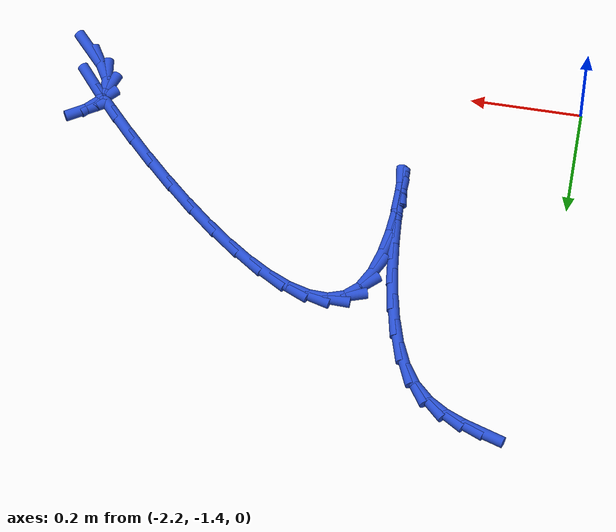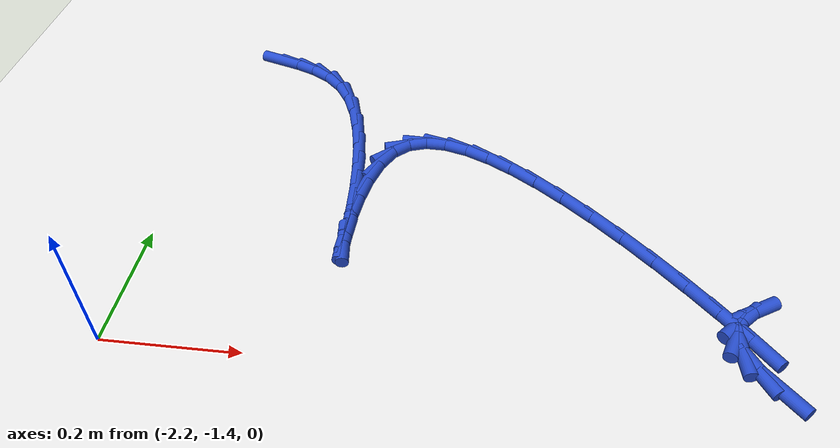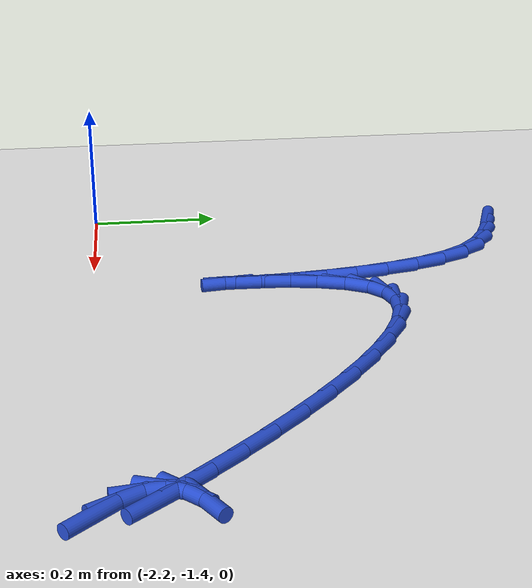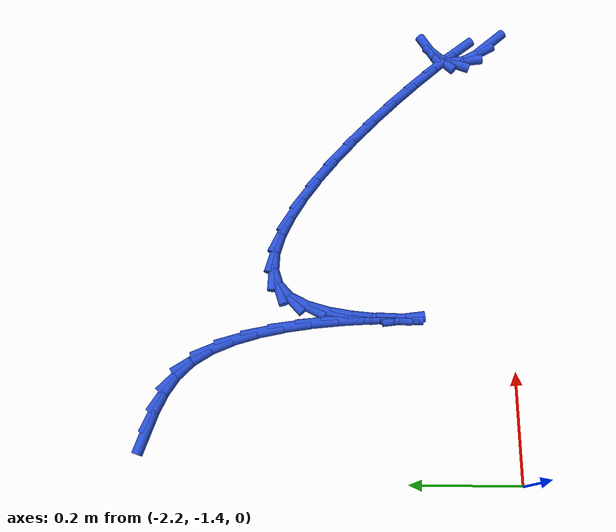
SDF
<sdf version="1.6">
 <world name="default">
  <model name="ground_plane">
   <static>1</static>
   <link name="link">
    <collision name="collision">
     <geometry><plane><normal>0 0 1</normal><size>100 100</size></plane></geometry>
     <surface><friction><ode><mu>100</mu><mu2>50</mu2></ode></friction></surface>
    </collision>
    <visual name="visual">
     <cast_shadows>0</cast_shadows>
     <geometry><plane><normal>0 0 1</normal><size>100 100</size></plane></geometry>
     <material>
      <script><uri>file://media/materials/scripts/gazebo.material</uri><name>Gazebo/WhiteGlow</name></script>
     </material>
    </visual>
   </link>
  </model>
  <model name="line">
   <link name="link_145">
    <pose>-2.11602802087698 -0.7365968966434566 0.01 0 1.57 -0.31047247829978486</pose>
    <collision name="collision">
     <geometry><cylinder><radius>0.01</radius><length>0.08</length></cylinder></geometry>
    </collision>
    <visual name="visual">
     <material>
      <script><name>Gazebo/Blue</name><uri>file://media/materials/scripts/gazebo.material</uri></script>
     </material>
     <geometry><cylinder><radius>0.01</radius><length>0.08</length></cylinder></geometry>
    </visual>
   </link>
   <link name="link_146">
    <pose>-2.0814514845681753 -0.7476907279448258 0.01 0 1.57 -0.40312324345795586</pose>
    <collision name="collision">
     <geometry><cylinder><radius>0.01</radius><length>0.08</length></cylinder></geometry>
    </collision>
    <visual name="visual">
     <material>
      <script><name>Gazebo/Blue</name><uri>file://media/materials/scripts/gazebo.material</uri></script>
     </material>
     <geometry><cylinder><radius>0.01</radius><length>0.08</length></cylinder></geometry>
    </visual>
   </link>
   <link name="link_147">
    <pose>-2.0478871302217 -0.7620052415232837 0.01 0 1.57 -0.5578605766019754</pose>
    <collision name="collision">
     <geometry><cylinder><radius>0.01</radius><length>0.08</length></cylinder></geometry>
    </collision>
    <visual name="visual">
     <material>
      <script><name>Gazebo/Blue</name><uri>file://media/materials/scripts/gazebo.material</uri></script>
     </material>
     <geometry><cylinder><radius>0.01</radius><length>0.08</length></cylinder></geometry>
    </visual>
   </link>
   <link name="link_148">
    <pose>-2.016595764341615 -0.7815302141396764 0.01 0 1.57 -0.7664520123413866</pose>
    <collision name="collision">
     <geometry><cylinder><radius>0.01</radius><length>0.08</length></cylinder></geometry>
    </collision>
    <visual name="visual">
     <material>
      <script><name>Gazebo/Blue</name><uri>file://media/materials/scripts/gazebo.material</uri></script>
     </material>
     <geometry><cylinder><radius>0.01</radius><length>0.08</length></cylinder></geometry>
    </visual>
   </link>
   <link name="link_149">
    <pose>-1.9888381934319856 -0.8082554225548505 0.01 0 1.57 -0.9933609812040997</pose>
    <collision name="collision">
     <geometry><cylinder><radius>0.01</radius><length>0.08</length></cylinder></geometry>
    </collision>
    <visual name="visual">
     <material>
      <script><name>Gazebo/Blue</name><uri>file://media/materials/scripts/gazebo.material</uri></script>
     </material>
     <geometry><cylinder><radius>0.01</radius><length>0.08</length></cylinder></geometry>
    </visual>
   </link>
   <link name="link_150">
    <pose>-1.9657119761763013 -0.843751808380879 0.01 0 1.57 -1.1637436459038697</pose>
    <collision name="collision">
     <geometry><cylinder><radius>0.01</radius><length>0.08</length></cylinder></geometry>
    </collision>
    <visual name="visual">
     <material>
      <script><name>Gazebo/Blue</name><uri>file://media/materials/scripts/gazebo.material</uri></script>
     </material>
     <geometry><cylinder><radius>0.01</radius><length>0.08</length></cylinder></geometry>
    </visual>
   </link>
   <link name="link_151">
    <pose>-1.9471916994690344 -0.8867091718175285 0.01 0 1.57 -1.2785103189010771</pose>
    <collision name="collision">
     <geometry><cylinder><radius>0.01</radius><length>0.08</length></cylinder></geometry>
    </collision>
    <visual name="visual">
     <material>
      <script><name>Gazebo/Blue</name><uri>file://media/materials/scripts/gazebo.material</uri></script>
     </material>
     <geometry><cylinder><radius>0.01</radius><length>0.08</length></cylinder></geometry>
    </visual>
   </link>
   <link name="link_152">
    <pose>-1.9327795547486228 -0.9346053163566493 0.01 0 1.57 -1.3592647021777633</pose>
    <collision name="collision">
     <geometry><cylinder><radius>0.01</radius><length>0.08</length></cylinder></geometry>
    </collision>
    <visual name="visual">
     <material>
      <script><name>Gazebo/Blue</name><uri>file://media/materials/scripts/gazebo.material</uri></script>
     </material>
     <geometry><cylinder><radius>0.01</radius><length>0.08</length></cylinder></geometry>
    </visual>
   </link>
   <link name="link_153">
    <pose>-1.9219760930564305 -0.9849138368216397 0.01 0 1.57 -1.418692011305713</pose>
    <collision name="collision">
     <geometry><cylinder><radius>0.01</radius><length>0.08</length></cylinder></geometry>
    </collision>
    <visual name="visual">
     <material>
      <script><name>Gazebo/Blue</name><uri>file://media/materials/scripts/gazebo.material</uri></script>
     </material>
     <geometry><cylinder><radius>0.01</radius><length>0.08</length></cylinder></geometry>
    </visual>
   </link>
   <link name="link_154">
    <pose>-1.914281865433821 -1.0351083280358986 0.01 0 1.57 -1.4642817614699033</pose>
    <collision name="collision">
     <geometry><cylinder><radius>0.01</radius><length>0.08</length></cylinder></geometry>
    </collision>
    <visual name="visual">
     <material>
      <script><name>Gazebo/Blue</name><uri>file://media/materials/scripts/gazebo.material</uri></script>
     </material>
     <geometry><cylinder><radius>0.01</radius><length>0.08</length></cylinder></geometry>
    </visual>
   </link>
   <link name="link_155">
    <pose>-1.9091974229221589 -1.0826623848228245 0.01 0 1.57 -1.5007459610336376</pose>
    <collision name="collision">
     <geometry><cylinder><radius>0.01</radius><length>0.08</length></cylinder></geometry>
    </collision>
    <visual name="visual">
     <material>
      <script><name>Gazebo/Blue</name><uri>file://media/materials/scripts/gazebo.material</uri></script>
     </material>
     <geometry><cylinder><radius>0.01</radius><length>0.08</length></cylinder></geometry>
    </visual>
   </link>
   <link name="link_156">
    <pose>-1.9062233165628069 -1.1250496020058158 0.01 0 1.57 -1.5315238493070107</pose>
    <collision name="collision">
     <geometry><cylinder><radius>0.01</radius><length>0.08</length></cylinder></geometry>
    </collision>
    <visual name="visual">
     <material>
      <script><name>Gazebo/Blue</name><uri>file://media/materials/scripts/gazebo.material</uri></script>
     </material>
     <geometry><cylinder><radius>0.01</radius><length>0.08</length></cylinder></geometry>
    </visual>
   </link>
   <link name="link_157">
    <pose>-1.9048600973971297 -1.159743574408271 0.01 0 1.57 -1.5605091350062055</pose>
    <collision name="collision">
     <geometry><cylinder><radius>0.01</radius><length>0.08</length></cylinder></geometry>
    </collision>
    <visual name="visual">
     <material>
      <script><name>Gazebo/Blue</name><uri>file://media/materials/scripts/gazebo.material</uri></script>
     </material>
     <geometry><cylinder><radius>0.01</radius><length>0.08</length></cylinder></geometry>
    </visual>
   </link>
   <link name="link_158">
    <pose>-1.904608316466491 -1.1842178968535888 0.01 0 1.57 1.5400931426541125</pose>
    <collision name="collision">
     <geometry><cylinder><radius>0.01</radius><length>0.08</length></cylinder></geometry>
    </collision>
    <visual name="visual">
     <material>
      <script><name>Gazebo/Blue</name><uri>file://media/materials/scripts/gazebo.material</uri></script>
     </material>
     <geometry><cylinder><radius>0.01</radius><length>0.08</length></cylinder></geometry>
    </visual>
   </link>
   <link name="link_159">
    <pose>-1.904968524812255 -1.1959461641651676 0.01 0 1.57 -1.4381922341594515</pose>
    <collision name="collision">
     <geometry><cylinder><radius>0.01</radius><length>0.08</length></cylinder></geometry>
    </collision>
    <visual name="visual">
     <material>
      <script><name>Gazebo/Blue</name><uri>file://media/materials/scripts/gazebo.material</uri></script>
     </material>
     <geometry><cylinder><radius>0.01</radius><length>0.08</length></cylinder></geometry>
    </visual>
   </link>
   <link name="link_160">
    <pose>-1.9054412734757853 -1.1924019711664067 0.01 0 1.57 -1.5706328962005065</pose>
    <collision name="collision">
     <geometry><cylinder><radius>0.01</radius><length>0.08</length></cylinder></geometry>
    </collision>
    <visual name="visual">
     <material>
      <script><name>Gazebo/Blue</name><uri>file://media/materials/scripts/gazebo.material</uri></script>
     </material>
     <geometry><cylinder><radius>0.01</radius><length>0.08</length></cylinder></geometry>
    </visual>
   </link>
   <link name="link_161">
    <pose>-1.90544455852294 -1.1723014071456057 0.01 0 1.57 1.5286655876502104</pose>
    <collision name="collision">
     <geometry><cylinder><radius>0.01</radius><length>0.08</length></cylinder></geometry>
    </collision>
    <visual name="visual">
     <material>
      <script><name>Gazebo/Blue</name><uri>file://media/materials/scripts/gazebo.material</uri></script>
     </material>
     <geometry><cylinder><radius>0.01</radius><length>0.08</length></cylinder></geometry>
    </visual>
   </link>
   <link name="link_162">
    <pose>-1.9040591158367315 -1.1394364990660397 0.01 0 1.57 1.4778376806809477</pose>
    <collision name="collision">
     <geometry><cylinder><radius>0.01</radius><length>0.08</length></cylinder></geometry>
    </collision>
    <visual name="visual">
     <material>
      <script><name>Gazebo/Blue</name><uri>file://media/materials/scripts/gazebo.material</uri></script>
     </material>
     <geometry><cylinder><radius>0.01</radius><length>0.08</length></cylinder></geometry>
    </visual>
   </link>
   <link name="link_163">
    <pose>-1.9002795688216205 -1.0988953105901944 0.01 0 1.57 1.405855341882933</pose>
    <collision name="collision">
     <geometry><cylinder><radius>0.01</radius><length>0.08</length></cylinder></geometry>
    </collision>
    <visual name="visual">
     <material>
      <script><name>Gazebo/Blue</name><uri>file://media/materials/scripts/gazebo.material</uri></script>
     </material>
     <geometry><cylinder><radius>0.01</radius><length>0.08</length></cylinder></geometry>
    </visual>
   </link>
   <link name="link_164">
    <pose>-1.89310054085275 -1.0557659058218027 0.01 0 1.57 1.29305560544293</pose>
    <collision name="collision">
     <geometry><cylinder><radius>0.01</radius><length>0.08</length></cylinder></geometry>
    </collision>
    <visual name="visual">
     <material>
      <script><name>Gazebo/Blue</name><uri>file://media/materials/scripts/gazebo.material</uri></script>
     </material>
     <geometry><cylinder><radius>0.01</radius><length>0.08</length></cylinder></geometry>
    </visual>
   </link>
   <link name="link_165">
    <pose>-1.8815166553052634 -1.0151363488645972 0.01 0 1.57 1.0957550850307063</pose>
    <collision name="collision">
     <geometry><cylinder><radius>0.01</radius><length>0.08</length></cylinder></geometry>
    </collision>
    <visual name="visual">
     <material>
      <script><name>Gazebo/Blue</name><uri>file://media/materials/scripts/gazebo.material</uri></script>
     </material>
     <geometry><cylinder><radius>0.01</radius><length>0.08</length></cylinder></geometry>
    </visual>
   </link>
   <link name="link_166">
    <pose>-1.864522535554304 -0.9820947038223105 0.01 0 1.57 0.743063597456006</pose>
    <collision name="collision">
     <geometry><cylinder><radius>0.01</radius><length>0.08</length></cylinder></geometry>
    </collision>
    <visual name="visual">
     <material>
      <script><name>Gazebo/Blue</name><uri>file://media/materials/scripts/gazebo.material</uri></script>
     </material>
     <geometry><cylinder><radius>0.01</radius><length>0.08</length></cylinder></geometry>
    </visual>
   </link>
   <link name="link_167">
    <pose>-1.8413744357397341 -0.9608280091492051 0.01 0 1.57 0.31774739328956525</pose>
    <collision name="collision">
     <geometry><cylinder><radius>0.01</radius><length>0.08</length></cylinder></geometry>
    </collision>
    <visual name="visual">
     <material>
      <script><name>Gazebo/Blue</name><uri>file://media/materials/scripts/gazebo.material</uri></script>
     </material>
     <geometry><cylinder><radius>0.01</radius><length>0.08</length></cylinder></geometry>
    </visual>
   </link>
   <link name="link_168">
    <pose>-1.8125418033536875 -0.9513452077711462 0.01 0 1.57 -0.03262906418674657</pose>
    <collision name="collision">
     <geometry><cylinder><radius>0.01</radius><length>0.08</length></cylinder></geometry>
    </collision>
    <visual name="visual">
     <material>
      <script><name>Gazebo/Blue</name><uri>file://media/materials/scripts/gazebo.material</uri></script>
     </material>
     <geometry><cylinder><radius>0.01</radius><length>0.08</length></cylinder></geometry>
    </visual>
   </link>
   <link name="link_169">
    <pose>-1.7788454814387267 -0.9524450775770741 0.01 0 1.57 -0.2709001555543969</pose>
    <collision name="collision">
     <geometry><cylinder><radius>0.01</radius><length>0.08</length></cylinder></geometry>
    </collision>
    <visual name="visual">
     <material>
      <script><name>Gazebo/Blue</name><uri>file://media/materials/scripts/gazebo.material</uri></script>
     </material>
     <geometry><cylinder><radius>0.01</radius><length>0.08</length></cylinder></geometry>
    </visual>
   </link>
   <link name="link_170">
    <pose>-1.741106349269625 -0.9629262716764487 0.01 0 1.57 -0.4274871915382154</pose>
    <collision name="collision">
     <geometry><cylinder><radius>0.01</radius><length>0.08</length></cylinder></geometry>
    </collision>
    <visual name="visual">
     <material>
      <script><name>Gazebo/Blue</name><uri>file://media/materials/scripts/gazebo.material</uri></script>
     </material>
     <geometry><cylinder><radius>0.01</radius><length>0.08</length></cylinder></geometry>
    </visual>
   </link>
   <link name="link_171">
    <pose>-1.700145286121156 -0.9815874431787286 0.01 0 1.57 -0.533994182326448</pose>
    <collision name="collision">
     <geometry><cylinder><radius>0.01</radius><length>0.08</length></cylinder></geometry>
    </collision>
    <visual name="visual">
     <material>
      <script><name>Gazebo/Blue</name><uri>file://media/materials/scripts/gazebo.material</uri></script>
     </material>
     <geometry><cylinder><radius>0.01</radius><length>0.08</length></cylinder></geometry>
    </visual>
   </link>
   <link name="link_172">
    <pose>-1.656783171268092 -1.007227245193373 0.01 0 1.57 -0.6100907819886694</pose>
    <collision name="collision">
     <geometry><cylinder><radius>0.01</radius><length>0.08</length></cylinder></geometry>
    </collision>
    <visual name="visual">
     <material>
      <script><name>Gazebo/Blue</name><uri>file://media/materials/scripts/gazebo.material</uri></script>
     </material>
     <geometry><cylinder><radius>0.01</radius><length>0.08</length></cylinder></geometry>
    </visual>
   </link>
   <link name="link_173">
    <pose>-1.6118408839852079 -1.0386443308298414 0.01 0 1.57 -0.6671132712760014</pose>
    <collision name="collision">
     <geometry><cylinder><radius>0.01</radius><length>0.08</length></cylinder></geometry>
    </collision>
    <visual name="visual">
     <material>
      <script><name>Gazebo/Blue</name><uri>file://media/materials/scripts/gazebo.material</uri></script>
     </material>
     <geometry><cylinder><radius>0.01</radius><length>0.08</length></cylinder></geometry>
    </visual>
   </link>
   <link name="link_174">
    <pose>-1.5661393035472768 -1.0746373531975921 0.01 0 1.57 -0.7117455068609005</pose>
    <collision name="collision">
     <geometry><cylinder><radius>0.01</radius><length>0.08</length></cylinder></geometry>
    </collision>
    <visual name="visual">
     <material>
      <script><name>Gazebo/Blue</name><uri>file://media/materials/scripts/gazebo.material</uri></script>
     </material>
     <geometry><cylinder><radius>0.01</radius><length>0.08</length></cylinder></geometry>
    </visual>
   </link>
   <link name="link_175">
    <pose>-1.5204993092290717 -1.1140049654060855 0.01 0 1.57 -0.748141552457472</pose>
    <collision name="collision">
     <geometry><cylinder><radius>0.01</radius><length>0.08</length></cylinder></geometry>
    </collision>
    <visual name="visual">
     <material>
      <script><name>Gazebo/Blue</name><uri>file://media/materials/scripts/gazebo.material</uri></script>
     </material>
     <geometry><cylinder><radius>0.01</radius><length>0.08</length></cylinder></geometry>
    </visual>
   </link>
   <link name="link_176">
    <pose>-1.475741780305367 -1.1555458205647782 0.01 0 1.57 -0.7790706514068719</pose>
    <collision name="collision">
     <geometry><cylinder><radius>0.01</radius><length>0.08</length></cylinder></geometry>
    </collision>
    <visual name="visual">
     <material>
      <script><name>Gazebo/Blue</name><uri>file://media/materials/scripts/gazebo.material</uri></script>
     </material>
     <geometry><cylinder><radius>0.01</radius><length>0.08</length></cylinder></geometry>
    </visual>
   </link>
   <link name="link_177">
    <pose>-1.432687596050934 -1.1980585717831325 0.01 0 1.57 -0.8065672146717712</pose>
    <collision name="collision">
     <geometry><cylinder><radius>0.01</radius><length>0.08</length></cylinder></geometry>
    </collision>
    <visual name="visual">
     <material>
      <script><name>Gazebo/Blue</name><uri>file://media/materials/scripts/gazebo.material</uri></script>
     </material>
     <geometry><cylinder><radius>0.01</radius><length>0.08</length></cylinder></geometry>
    </visual>
   </link>
   <link name="link_178">
    <pose>-1.3921576357405474 -1.2403418721706059 0.01 0 1.57 -0.8323621907809274</pose>
    <collision name="collision">
     <geometry><cylinder><radius>0.01</radius><length>0.08</length></cylinder></geometry>
    </collision>
    <visual name="visual">
     <material>
      <script><name>Gazebo/Blue</name><uri>file://media/materials/scripts/gazebo.material</uri></script>
     </material>
     <geometry><cylinder><radius>0.01</radius><length>0.08</length></cylinder></geometry>
    </visual>
   </link>
   <link name="link_179">
    <pose>-1.35497277864898 -1.2811943748366574 0.01 0 1.57 -0.8582831387840837</pose>
    <collision name="collision">
     <geometry><cylinder><radius>0.01</radius><length>0.08</length></cylinder></geometry>
    </collision>
    <visual name="visual">
     <material>
      <script><name>Gazebo/Blue</name><uri>file://media/materials/scripts/gazebo.material</uri></script>
     </material>
     <geometry><cylinder><radius>0.01</radius><length>0.08</length></cylinder></geometry>
    </visual>
   </link>
   <link name="link_180">
    <pose>-1.3219539040510064 -1.3194147328907473 0.01 0 1.57 -0.88685837565516</pose>
    <collision name="collision">
     <geometry><cylinder><radius>0.01</radius><length>0.08</length></cylinder></geometry>
    </collision>
    <visual name="visual">
     <material>
      <script><name>Gazebo/Blue</name><uri>file://media/materials/scripts/gazebo.material</uri></script>
     </material>
     <geometry><cylinder><radius>0.01</radius><length>0.08</length></cylinder></geometry>
    </visual>
   </link>
   <link name="link_188">
    <pose>-1.3028433443896863 -1.3886053146968091 0.01 0 1.57 -0.8421901396646009</pose>
    <collision name="collision">
     <geometry><cylinder><radius>0.01</radius><length>0.08</length></cylinder></geometry>
    </collision>
    <visual name="visual">
     <material>
      <script><name>Gazebo/Blue</name><uri>file://media/materials/scripts/gazebo.material</uri></script>
     </material>
     <geometry><cylinder><radius>0.01</radius><length>0.08</length></cylinder></geometry>
    </visual>
   </link>
   <link name="link_189">
    <pose>-1.328573165156814 -1.359773494823222 0.01 0 1.57 -1.0493458742304498</pose>
    <collision name="collision">
     <geometry><cylinder><radius>0.01</radius><length>0.08</length></cylinder></geometry>
    </collision>
    <visual name="visual">
     <material>
      <script><name>Gazebo/Blue</name><uri>file://media/materials/scripts/gazebo.material</uri></script>
     </material>
     <geometry><cylinder><radius>0.01</radius><length>0.08</length></cylinder></geometry>
    </visual>
   </link>
   <link name="link_190">
    <pose>-1.3450701549738588 -1.3310575771429387 0.01 0 1.57 -1.4433901893644718</pose>
    <collision name="collision">
     <geometry><cylinder><radius>0.01</radius><length>0.08</length></cylinder></geometry>
    </collision>
    <visual name="visual">
     <material>
      <script><name>Gazebo/Blue</name><uri>file://media/materials/scripts/gazebo.material</uri></script>
     </material>
     <geometry><cylinder><radius>0.01</radius><length>0.08</length></cylinder></geometry>
    </visual>
   </link>
   <link name="link_191">
    <pose>-1.3483768859379077 -1.3052439102149682 0.01 0 1.57 1.2076398785904907</pose>
    <collision name="collision">
     <geometry><cylinder><radius>0.01</radius><length>0.08</length></cylinder></geometry>
    </collision>
    <visual name="visual">
     <material>
      <script><name>Gazebo/Blue</name><uri>file://media/materials/scripts/gazebo.material</uri></script>
     </material>
     <geometry><cylinder><radius>0.01</radius><length>0.08</length></cylinder></geometry>
    </visual>
   </link>
   <link name="link_192">
    <pose>-1.3396958133816486 -1.282399631764804 0.01 0 1.57 0.8050051650661201</pose>
    <collision name="collision">
     <geometry><cylinder><radius>0.01</radius><length>0.08</length></cylinder></geometry>
    </collision>
    <visual name="visual">
     <material>
      <script><name>Gazebo/Blue</name><uri>file://media/materials/scripts/gazebo.material</uri></script>
     </material>
     <geometry><cylinder><radius>0.01</radius><length>0.08</length></cylinder></geometry>
    </visual>
   </link>
   <link name="link_193">
    <pose>-1.3205085213143612 -1.262444781282053 0.01 0 1.57 0.5460877839932977</pose>
    <collision name="collision">
     <geometry><cylinder><radius>0.01</radius><length>0.08</length></cylinder></geometry>
    </collision>
    <visual name="visual">
     <material>
      <script><name>Gazebo/Blue</name><uri>file://media/materials/scripts/gazebo.material</uri></script>
     </material>
     <geometry><cylinder><radius>0.01</radius><length>0.08</length></cylinder></geometry>
    </visual>
   </link>
  </model>
 </world>
</sdf>
